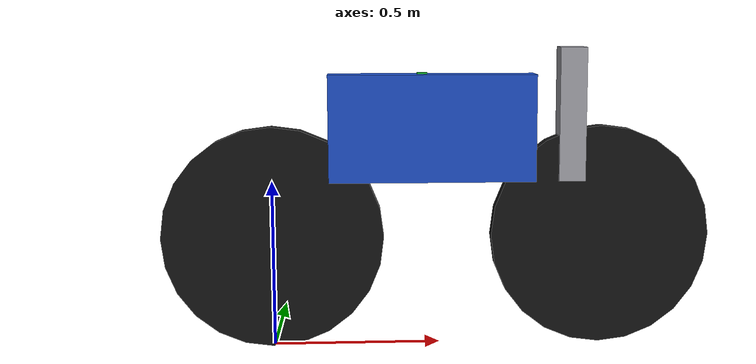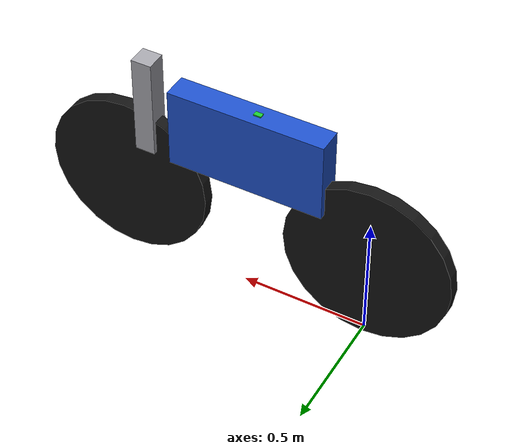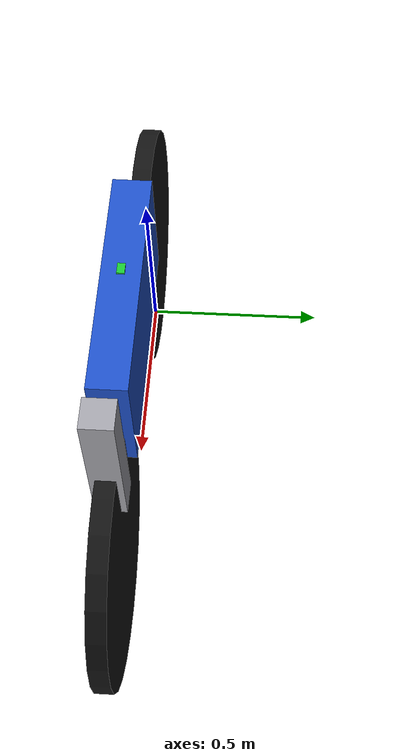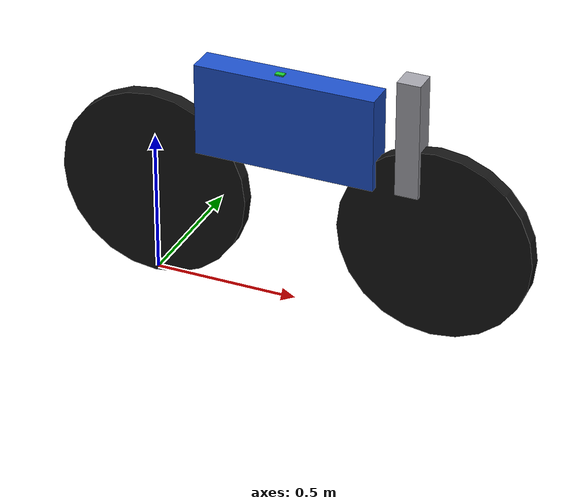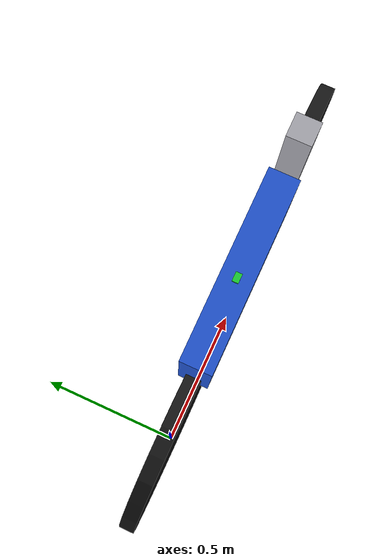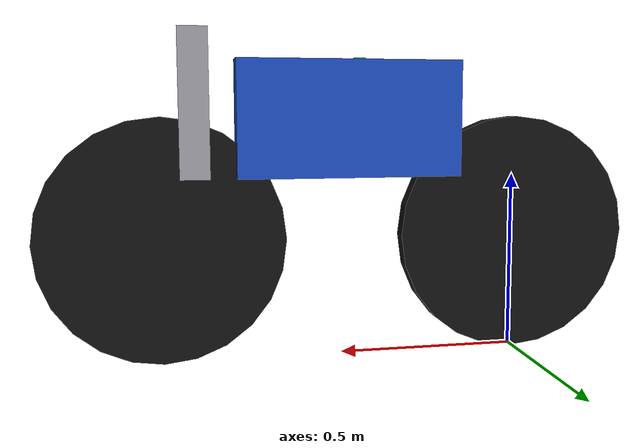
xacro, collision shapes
<?xml version="1.0"?>
<robot name="bicycle" xmlns:xacro="http://www.ros.org/wiki/xacro">
  <xacro:property name="bike_pi" value="3.141592653589793"/>
  <xacro:property name="wheel_radius" value="0.333"/>
  <xacro:property name="wheel_width" value="0.05"/>
  <xacro:property name="wheel_mass" value="0.45288"/>
  <xacro:property name="frame_mass" value="3.07549"/>
  <xacro:property name="steering_mass" value="1.55391"/>

  <material name="bicycle_blue"><color rgba="0.12 0.32 0.8 1"/></material>
  <material name="bicycle_black"><color rgba="0.08 0.08 0.08 1"/></material>
  <material name="bicycle_silver"><color rgba="0.65 0.65 0.68 1"/></material>
  <material name="bicycle_green"><color rgba="0.1 0.8 0.2 1"/></material>

  <!-- Box inertias are estimates, not the CAD inertia tensors. -->
  <xacro:macro name="bike_box_inertia" params="mass x y z xyz">
    <inertial>
      <origin xyz="${xyz}"/>
      <mass value="${mass}"/>
      <inertia ixx="${mass*(y*y+z*z)/12}" ixy="0" ixz="0"
               iyy="${mass*(x*x+z*z)/12}" iyz="0" izz="${mass*(x*x+y*y)/12}"/>
    </inertial>
  </xacro:macro>
  <link name="base_link"/>
  <joint name="base_to_frame" type="fixed"><parent link="base_link"/><child link="frame"/></joint>
  <link name="frame">
    <visual>
      <origin xyz="0.93 -0.095205 0.318" rpy="${bike_pi/2} 0 ${bike_pi}"/>
      <geometry><mesh filename="package://bicycle/meshes/Frame.STL" scale="0.001 0.001 0.001"/></geometry>
      <material name="bicycle_blue"/>
    </visual>
    <!-- Narrow box deliberately approximates only the central frame. -->
    <collision><origin xyz="0.48 0 0.66"/><geometry><box size="0.62 0.10 0.32"/></geometry></collision>
    <xacro:bike_box_inertia mass="${frame_mass}" x="0.94" y="0.19" z="0.71" xyz="0.48 0 0.66"/>
  </link>
  <link name="steering">
    <visual>
      <origin xyz="0.13 -0.290174 -0.44" rpy="${bike_pi/2} 0 ${bike_pi}"/>
      <geometry><mesh filename="package://bicycle/meshes/Steering.STL" scale="0.001 0.001 0.001"/></geometry>
      <material name="bicycle_silver"/>
    </visual>
    <collision><origin xyz="0.02 0 -0.10"/><geometry><box size="0.08 0.08 0.40"/></geometry></collision>
    <xacro:bike_box_inertia mass="${steering_mass}" x="0.22" y="0.58" z="0.76" xyz="0.02 0 -0.10"/>
  </link>
  <joint name="steering_joint" type="revolute">
    <parent link="frame"/><child link="steering"/>
    <origin xyz="0.88 0 0.80"/>
    <axis xyz="-0.22 0 0.975499872"/>
    <limit lower="-0.7" upper="0.7" effort="20" velocity="2"/>
    <dynamics damping="0.1" friction="0.01"/>
  </joint>
  <xacro:macro name="bike_wheel" params="name parent xyz">
    <link name="${name}">
      <visual>
        <origin xyz="0.3339405 -0.025029778 -0.3337337" rpy="${bike_pi/2} 0 ${bike_pi}"/>
        <geometry><mesh filename="package://bicycle/meshes/Wheel.STL" scale="0.001 0.001 0.001"/></geometry>
        <material name="bicycle_black"/>
      </visual>
      <collision>
        <origin rpy="${bike_pi/2} 0 0"/>
        <geometry><cylinder radius="${wheel_radius}" length="${wheel_width}"/></geometry>
      </collision>
      <!-- Thin-hoop approximation about the lateral axle. -->
      <inertial><mass value="${wheel_mass}"/>
        <inertia ixx="${wheel_mass*(wheel_radius*wheel_radius/2+wheel_width*wheel_width/12)}"
                 iyy="${wheel_mass*wheel_radius*wheel_radius}"
                 izz="${wheel_mass*(wheel_radius*wheel_radius/2+wheel_width*wheel_width/12)}"
                 ixy="0" ixz="0" iyz="0"/>
      </inertial>
    </link>
    <joint name="${name}_joint" type="continuous">
      <parent link="${parent}"/><child link="${name}"/><origin xyz="${xyz}"/>
      <axis xyz="0 1 0"/><dynamics damping="0.01" friction="0"/>
    </joint>
  </xacro:macro>
  <xacro:bike_wheel name="wheel1" parent="frame" xyz="0 0 0.333"/>
  <xacro:bike_wheel name="wheel2" parent="steering" xyz="0.11 0 -0.467"/>
  <link name="imu_link">
    <visual><geometry><box size="0.03 0.02 0.01"/></geometry><material name="bicycle_green"/></visual>
    <collision><geometry><box size="0.03 0.02 0.01"/></geometry></collision>
    <xacro:bike_box_inertia mass="0.01" x="0.03" y="0.02" z="0.01" xyz="0 0 0"/>
  </link>
  <joint name="imu_joint" type="fixed">
    <parent link="frame"/><child link="imu_link"/><origin xyz="0.45 0 0.82"/>
  </joint>
  <!-- bicycle.gazebo is intentionally not instantiated: its sensor configuration
       is incomplete and it contains a legacy ROS control plugin. -->
  <xacro:arg name="add_rider" default="false"/>
  <xacro:arg name="rider_xyz" default="0.29 0 1.01"/>
  <xacro:if value="$(arg add_rider)">
    <xacro:include filename="$(find bicycle)/model/seated_rider.urdf.xacro"/>
    <joint name="rider_saddle_mount" type="fixed">
      <parent link="frame"/><child link="rider_Pelvis"/>
      <origin xyz="$(arg rider_xyz)" rpy="0 0 0"/>
    </joint>
  </xacro:if>
</robot>
